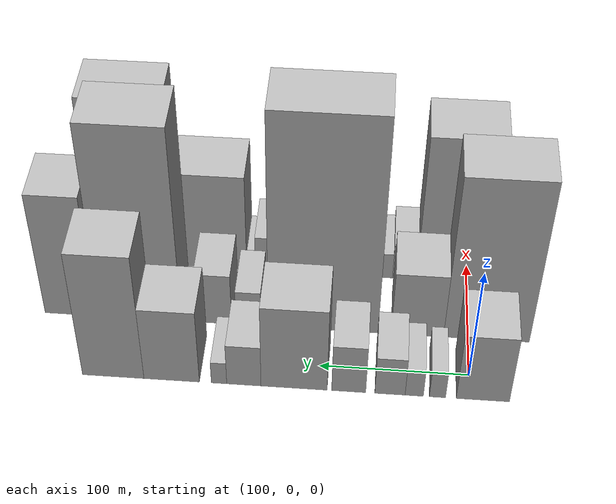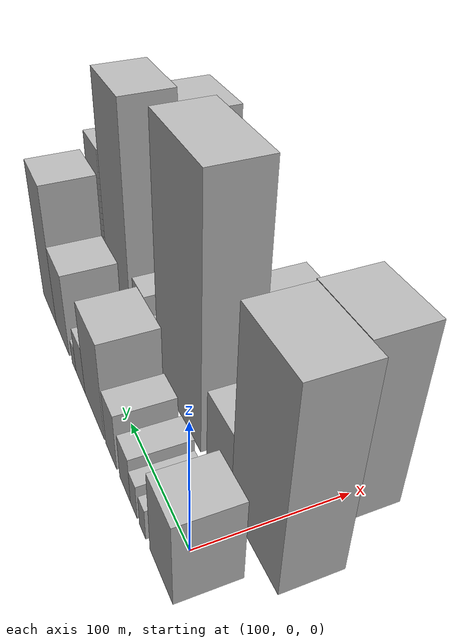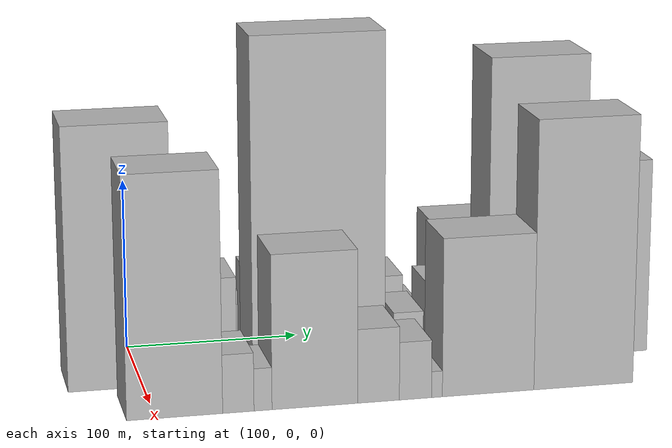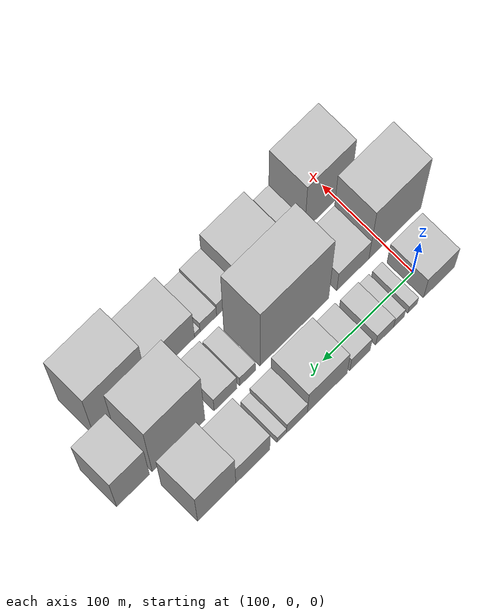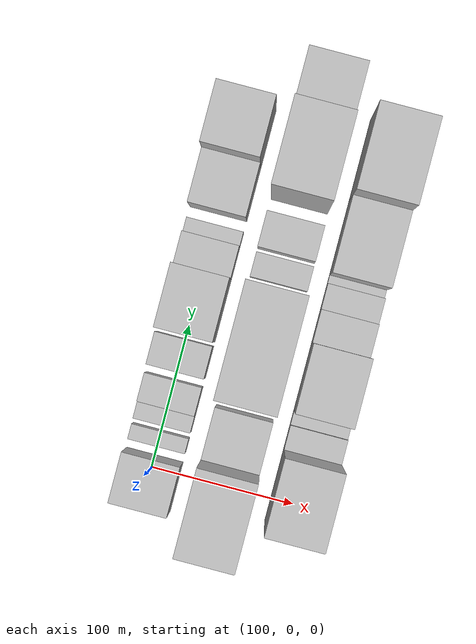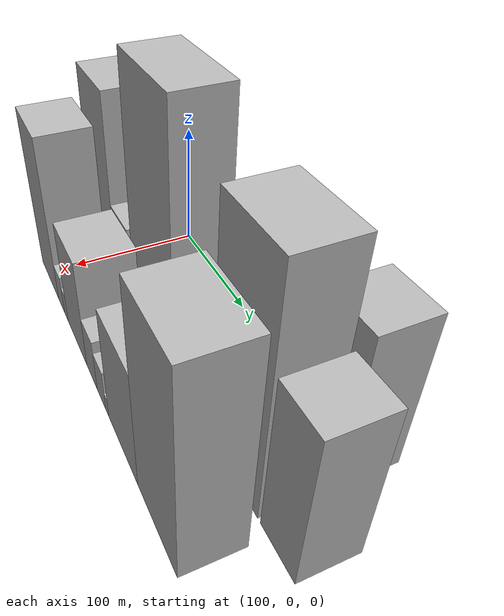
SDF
<sdf version="1.6">
 <world name="default">
  <model name="building_17">
   <static>1</static>
   <pose>100.0000 -8.6948 0 0.000000 0.000000 0.000000</pose>
   <link name="link">
    <pose>0 0 31.50 0 0 0</pose>
    <collision name="collision"><geometry><box><size>40.0000 34.7825 63.0000</size></box></geometry></collision>
    <visual name="visual">
     <cast_shadows>0</cast_shadows>
     <geometry><box><size>40.0000 34.7825 63.0000</size></box></geometry>
     <material>
      <script>
       <uri>model://HANNAS_wall/materials/scripts</uri>
       <uri>model://HANNAS_wall/materials/textures</uri>
       <name>vrc/HANNAS_wall</name>
      </script>
     </material>
    </visual>
   </link>
  </model>
  <model name="building_18">
   <static>1</static>
   <pose>100.0000 20.9811 0 0.000000 0.000000 0.000000</pose>
   <link name="link">
    <pose>0 0 12.00 0 0 0</pose>
    <collision name="collision"><geometry><box><size>40.0000 10.5693 24.0000</size></box></geometry></collision>
    <visual name="visual">
     <cast_shadows>0</cast_shadows>
     <geometry><box><size>40.0000 10.5693 24.0000</size></box></geometry>
     <material>
      <script>
       <uri>model://HANNAS_wall/materials/scripts</uri>
       <uri>model://HANNAS_wall/materials/textures</uri>
       <name>vrc/HANNAS_wall</name>
      </script>
     </material>
    </visual>
   </link>
  </model>
  <model name="building_19">
   <static>1</static>
   <pose>100.0000 36.2725 0 0.000000 0.000000 0.000000</pose>
   <link name="link">
    <pose>0 0 13.50 0 0 0</pose>
    <collision name="collision"><geometry><box><size>40.0000 12.0134 27.0000</size></box></geometry></collision>
    <visual name="visual">
     <cast_shadows>0</cast_shadows>
     <geometry><box><size>40.0000 12.0134 27.0000</size></box></geometry>
     <material>
      <script>
       <uri>model://HANNAS_wall/materials/scripts</uri>
       <uri>model://HANNAS_wall/materials/textures</uri>
       <name>vrc/HANNAS_wall</name>
      </script>
     </material>
    </visual>
   </link>
  </model>
  <model name="building_20">
   <static>1</static>
   <pose>100.0000 52.2547 0 0.000000 0.000000 0.000000</pose>
   <link name="link">
    <pose>0 0 18.00 0 0 0</pose>
    <collision name="collision"><geometry><box><size>40.0000 19.9511 36.0000</size></box></geometry></collision>
    <visual name="visual">
     <cast_shadows>0</cast_shadows>
     <geometry><box><size>40.0000 19.9511 36.0000</size></box></geometry>
     <material>
      <script>
       <uri>model://HANNAS_wall/materials/scripts</uri>
       <uri>model://HANNAS_wall/materials/textures</uri>
       <name>vrc/HANNAS_wall</name>
      </script>
     </material>
    </visual>
   </link>
  </model>
  <model name="building_21">
   <static>1</static>
   <pose>100.0000 79.4977 0 0.000000 0.000000 0.000000</pose>
   <link name="link">
    <pose>0 0 22.50 0 0 0</pose>
    <collision name="collision"><geometry><box><size>40.0000 22.5349 45.0000</size></box></geometry></collision>
    <visual name="visual">
     <cast_shadows>0</cast_shadows>
     <geometry><box><size>40.0000 22.5349 45.0000</size></box></geometry>
     <material>
      <script>
       <uri>model://HANNAS_wall/materials/scripts</uri>
       <uri>model://HANNAS_wall/materials/textures</uri>
       <name>vrc/HANNAS_wall</name>
      </script>
     </material>
    </visual>
   </link>
  </model>
  <model name="building_22">
   <static>1</static>
   <pose>100.0000 115.7366 0 0.000000 0.000000 0.000000</pose>
   <link name="link">
    <pose>0 0 39.00 0 0 0</pose>
    <collision name="collision"><geometry><box><size>40.0000 43.9428 78.0000</size></box></geometry></collision>
    <visual name="visual">
     <cast_shadows>0</cast_shadows>
     <geometry><box><size>40.0000 43.9428 78.0000</size></box></geometry>
     <material>
      <script>
       <uri>model://HANNAS_wall/materials/scripts</uri>
       <uri>model://HANNAS_wall/materials/textures</uri>
       <name>vrc/HANNAS_wall</name>
      </script>
     </material>
    </visual>
   </link>
  </model>
  <model name="building_23">
   <static>1</static>
   <pose>100.0000 149.1312 0 0.000000 0.000000 0.000000</pose>
   <link name="link">
    <pose>0 0 19.50 0 0 0</pose>
    <collision name="collision"><geometry><box><size>40.0000 22.8464 39.0000</size></box></geometry></collision>
    <visual name="visual">
     <cast_shadows>0</cast_shadows>
     <geometry><box><size>40.0000 22.8464 39.0000</size></box></geometry>
     <material>
      <script>
       <uri>model://HANNAS_wall/materials/scripts</uri>
       <uri>model://HANNAS_wall/materials/textures</uri>
       <name>vrc/HANNAS_wall</name>
      </script>
     </material>
    </visual>
   </link>
  </model>
  <model name="building_24">
   <static>1</static>
   <pose>100.0000 165.6955 0 0.000000 0.000000 0.000000</pose>
   <link name="link">
    <pose>0 0 10.50 0 0 0</pose>
    <collision name="collision"><geometry><box><size>40.0000 10.2822 21.0000</size></box></geometry></collision>
    <visual name="visual">
     <cast_shadows>0</cast_shadows>
     <geometry><box><size>40.0000 10.2822 21.0000</size></box></geometry>
     <material>
      <script>
       <uri>model://HANNAS_wall/materials/scripts</uri>
       <uri>model://HANNAS_wall/materials/textures</uri>
       <name>vrc/HANNAS_wall</name>
      </script>
     </material>
    </visual>
   </link>
  </model>
  <model name="building_25">
   <static>1</static>
   <pose>100.0000 197.4413 0 0.000000 0.000000 0.000000</pose>
   <link name="link">
    <pose>0 0 34.50 0 0 0</pose>
    <collision name="collision"><geometry><box><size>40.0000 37.2094 69.0000</size></box></geometry></collision>
    <visual name="visual">
     <cast_shadows>0</cast_shadows>
     <geometry><box><size>40.0000 37.2094 69.0000</size></box></geometry>
     <material>
      <script>
       <uri>model://HANNAS_wall/materials/scripts</uri>
       <uri>model://HANNAS_wall/materials/textures</uri>
       <name>vrc/HANNAS_wall</name>
      </script>
     </material>
    </visual>
   </link>
  </model>
  <model name="building_26">
   <static>1</static>
   <pose>100.0000 236.7408 0 0.000000 0.000000 0.000000</pose>
   <link name="link">
    <pose>0 0 58.50 0 0 0</pose>
    <collision name="collision"><geometry><box><size>40.0000 41.3896 117.0000</size></box></geometry></collision>
    <visual name="visual">
     <cast_shadows>0</cast_shadows>
     <geometry><box><size>40.0000 41.3896 117.0000</size></box></geometry>
     <material>
      <script>
       <uri>model://HANNAS_wall/materials/scripts</uri>
       <uri>model://HANNAS_wall/materials/textures</uri>
       <name>vrc/HANNAS_wall</name>
      </script>
     </material>
    </visual>
   </link>
  </model>
  <model name="building_53">
   <static>1</static>
   <pose>152.0000 -12.3465 0 0.000000 0.000000 0.000000</pose>
   <link name="link">
    <pose>0 0 75.00 0 0 0</pose>
    <collision name="collision"><geometry><box><size>40.0000 58.4212 150.0000</size></box></geometry></collision>
    <visual name="visual">
     <cast_shadows>0</cast_shadows>
     <geometry><box><size>40.0000 58.4212 150.0000</size></box></geometry>
     <material>
      <script>
       <uri>model://HANNAS_wall/materials/scripts</uri>
       <uri>model://HANNAS_wall/materials/textures</uri>
       <name>vrc/HANNAS_wall</name>
      </script>
     </material>
    </visual>
   </link>
  </model>
  <model name="building_54">
   <static>1</static>
   <pose>152.0000 34.7778 0 0.000000 0.000000 0.000000</pose>
   <link name="link">
    <pose>0 0 30.00 0 0 0</pose>
    <collision name="collision"><geometry><box><size>40.0000 35.8274 60.0000</size></box></geometry></collision>
    <visual name="visual">
     <cast_shadows>0</cast_shadows>
     <geometry><box><size>40.0000 35.8274 60.0000</size></box></geometry>
     <material>
      <script>
       <uri>model://HANNAS_wall/materials/scripts</uri>
       <uri>model://HANNAS_wall/materials/textures</uri>
       <name>vrc/HANNAS_wall</name>
      </script>
     </material>
    </visual>
   </link>
  </model>
  <model name="building_55">
   <static>1</static>
   <pose>152.0000 99.6434 0 0.000000 0.000000 0.000000</pose>
   <link name="link">
    <pose>0 0 97.50 0 0 0</pose>
    <collision name="collision"><geometry><box><size>40.0000 75.9037 195.0000</size></box></geometry></collision>
    <visual name="visual">
     <cast_shadows>0</cast_shadows>
     <geometry><box><size>40.0000 75.9037 195.0000</size></box></geometry>
     <material>
      <script>
       <uri>model://HANNAS_wall/materials/scripts</uri>
       <uri>model://HANNAS_wall/materials/textures</uri>
       <name>vrc/HANNAS_wall</name>
      </script>
     </material>
    </visual>
   </link>
  </model>
  <model name="building_56">
   <static>1</static>
   <pose>152.0000 151.2691 0 0.000000 0.000000 0.000000</pose>
   <link name="link">
    <pose>0 0 16.50 0 0 0</pose>
    <collision name="collision"><geometry><box><size>40.0000 17.3475 33.0000</size></box></geometry></collision>
    <visual name="visual">
     <cast_shadows>0</cast_shadows>
     <geometry><box><size>40.0000 17.3475 33.0000</size></box></geometry>
     <material>
      <script>
       <uri>model://HANNAS_wall/materials/scripts</uri>
       <uri>model://HANNAS_wall/materials/textures</uri>
       <name>vrc/HANNAS_wall</name>
      </script>
     </material>
    </visual>
   </link>
  </model>
  <model name="building_57">
   <static>1</static>
   <pose>152.0000 175.4248 0 0.000000 0.000000 0.000000</pose>
   <link name="link">
    <pose>0 0 24.00 0 0 0</pose>
    <collision name="collision"><geometry><box><size>40.0000 24.9639 48.0000</size></box></geometry></collision>
    <visual name="visual">
     <cast_shadows>0</cast_shadows>
     <geometry><box><size>40.0000 24.9639 48.0000</size></box></geometry>
     <material>
      <script>
       <uri>model://HANNAS_wall/materials/scripts</uri>
       <uri>model://HANNAS_wall/materials/textures</uri>
       <name>vrc/HANNAS_wall</name>
      </script>
     </material>
    </visual>
   </link>
  </model>
  <model name="building_58">
   <static>1</static>
   <pose>152.0000 226.5765 0 0.000000 0.000000 0.000000</pose>
   <link name="link">
    <pose>0 0 88.50 0 0 0</pose>
    <collision name="collision"><geometry><box><size>40.0000 57.3395 177.0000</size></box></geometry></collision>
    <visual name="visual">
     <cast_shadows>0</cast_shadows>
     <geometry><box><size>40.0000 57.3395 177.0000</size></box></geometry>
     <material>
      <script>
       <uri>model://HANNAS_wall/materials/scripts</uri>
       <uri>model://HANNAS_wall/materials/textures</uri>
       <name>vrc/HANNAS_wall</name>
      </script>
     </material>
    </visual>
   </link>
  </model>
  <model name="building_59">
   <static>1</static>
   <pose>152.0000 275.9863 0 0.000000 0.000000 0.000000</pose>
   <link name="link">
    <pose>0 0 57.00 0 0 0</pose>
    <collision name="collision"><geometry><box><size>40.0000 35.4802 114.0000</size></box></geometry></collision>
    <visual name="visual">
     <cast_shadows>0</cast_shadows>
     <geometry><box><size>40.0000 35.4802 114.0000</size></box></geometry>
     <material>
      <script>
       <uri>model://HANNAS_wall/materials/scripts</uri>
       <uri>model://HANNAS_wall/materials/textures</uri>
       <name>vrc/HANNAS_wall</name>
      </script>
     </material>
    </visual>
   </link>
  </model>
  <model name="building_87">
   <static>1</static>
   <pose>204.0000 10.0841 0 0.000000 0.000000 0.000000</pose>
   <link name="link">
    <pose>0 0 67.50 0 0 0</pose>
    <collision name="collision"><geometry><box><size>40.0000 51.7989 135.0000</size></box></geometry></collision>
    <visual name="visual">
     <cast_shadows>0</cast_shadows>
     <geometry><box><size>40.0000 51.7989 135.0000</size></box></geometry>
     <material>
      <script>
       <uri>model://HANNAS_wall/materials/scripts</uri>
       <uri>model://HANNAS_wall/materials/textures</uri>
       <name>vrc/HANNAS_wall</name>
      </script>
     </material>
    </visual>
   </link>
  </model>
  <model name="building_88">
   <static>1</static>
   <pose>204.0000 44.5185 0 0.000000 0.000000 0.000000</pose>
   <link name="link">
    <pose>0 0 16.50 0 0 0</pose>
    <collision name="collision"><geometry><box><size>40.0000 17.0699 33.0000</size></box></geometry></collision>
    <visual name="visual">
     <cast_shadows>0</cast_shadows>
     <geometry><box><size>40.0000 17.0699 33.0000</size></box></geometry>
     <material>
      <script>
       <uri>model://HANNAS_wall/materials/scripts</uri>
       <uri>model://HANNAS_wall/materials/textures</uri>
       <name>vrc/HANNAS_wall</name>
      </script>
     </material>
    </visual>
   </link>
  </model>
  <model name="building_89">
   <static>1</static>
   <pose>204.0000 57.9771 0 0.000000 0.000000 0.000000</pose>
   <link name="link">
    <pose>0 0 12.00 0 0 0</pose>
    <collision name="collision"><geometry><box><size>40.0000 9.8472 24.0000</size></box></geometry></collision>
    <visual name="visual">
     <cast_shadows>0</cast_shadows>
     <geometry><box><size>40.0000 9.8472 24.0000</size></box></geometry>
     <material>
      <script>
       <uri>model://HANNAS_wall/materials/scripts</uri>
       <uri>model://HANNAS_wall/materials/textures</uri>
       <name>vrc/HANNAS_wall</name>
      </script>
     </material>
    </visual>
   </link>
  </model>
  <model name="building_90">
   <static>1</static>
   <pose>204.0000 86.6123 0 0.000000 0.000000 0.000000</pose>
   <link name="link">
    <pose>0 0 43.50 0 0 0</pose>
    <collision name="collision"><geometry><box><size>40.0000 47.4232 87.0000</size></box></geometry></collision>
    <visual name="visual">
     <cast_shadows>0</cast_shadows>
     <geometry><box><size>40.0000 47.4232 87.0000</size></box></geometry>
     <material>
      <script>
       <uri>model://HANNAS_wall/materials/scripts</uri>
       <uri>model://HANNAS_wall/materials/textures</uri>
       <name>vrc/HANNAS_wall</name>
      </script>
     </material>
    </visual>
   </link>
  </model>
  <model name="building_91">
   <static>1</static>
   <pose>204.0000 121.9234 0 0.000000 0.000000 0.000000</pose>
   <link name="link">
    <pose>0 0 21.00 0 0 0</pose>
    <collision name="collision"><geometry><box><size>40.0000 23.1990 42.0000</size></box></geometry></collision>
    <visual name="visual">
     <cast_shadows>0</cast_shadows>
     <geometry><box><size>40.0000 23.1990 42.0000</size></box></geometry>
     <material>
      <script>
       <uri>model://HANNAS_wall/materials/scripts</uri>
       <uri>model://HANNAS_wall/materials/textures</uri>
       <name>vrc/HANNAS_wall</name>
      </script>
     </material>
    </visual>
   </link>
  </model>
  <model name="building_92">
   <static>1</static>
   <pose>204.0000 142.5553 0 0.000000 0.000000 0.000000</pose>
   <link name="link">
    <pose>0 0 16.50 0 0 0</pose>
    <collision name="collision"><geometry><box><size>40.0000 18.0648 33.0000</size></box></geometry></collision>
    <visual name="visual">
     <cast_shadows>0</cast_shadows>
     <geometry><box><size>40.0000 18.0648 33.0000</size></box></geometry>
     <material>
      <script>
       <uri>model://HANNAS_wall/materials/scripts</uri>
       <uri>model://HANNAS_wall/materials/textures</uri>
       <name>vrc/HANNAS_wall</name>
      </script>
     </material>
    </visual>
   </link>
  </model>
  <model name="building_93">
   <static>1</static>
   <pose>204.0000 154.6533 0 0.000000 0.000000 0.000000</pose>
   <link name="link">
    <pose>0 0 7.50 0 0 0</pose>
    <collision name="collision"><geometry><box><size>40.0000 6.1312 15.0000</size></box></geometry></collision>
    <visual name="visual">
     <cast_shadows>0</cast_shadows>
     <geometry><box><size>40.0000 6.1312 15.0000</size></box></geometry>
     <material>
      <script>
       <uri>model://HANNAS_wall/materials/scripts</uri>
       <uri>model://HANNAS_wall/materials/textures</uri>
       <name>vrc/HANNAS_wall</name>
      </script>
     </material>
    </visual>
   </link>
  </model>
  <model name="building_94">
   <static>1</static>
   <pose>204.0000 183.8300 0 0.000000 0.000000 0.000000</pose>
   <link name="link">
    <pose>0 0 45.00 0 0 0</pose>
    <collision name="collision"><geometry><box><size>40.0000 52.2223 90.0000</size></box></geometry></collision>
    <visual name="visual">
     <cast_shadows>0</cast_shadows>
     <geometry><box><size>40.0000 52.2223 90.0000</size></box></geometry>
     <material>
      <script>
       <uri>model://HANNAS_wall/materials/scripts</uri>
       <uri>model://HANNAS_wall/materials/textures</uri>
       <name>vrc/HANNAS_wall</name>
      </script>
     </material>
    </visual>
   </link>
  </model>
  <model name="building_95">
   <static>1</static>
   <pose>204.0000 238.6181 0 0.000000 0.000000 0.000000</pose>
   <link name="link">
    <pose>0 0 76.50 0 0 0</pose>
    <collision name="collision"><geometry><box><size>40.0000 57.3539 153.0000</size></box></geometry></collision>
    <visual name="visual">
     <cast_shadows>0</cast_shadows>
     <geometry><box><size>40.0000 57.3539 153.0000</size></box></geometry>
     <material>
      <script>
       <uri>model://HANNAS_wall/materials/scripts</uri>
       <uri>model://HANNAS_wall/materials/textures</uri>
       <name>vrc/HANNAS_wall</name>
      </script>
     </material>
    </visual>
   </link>
  </model>
 </world>
</sdf>
